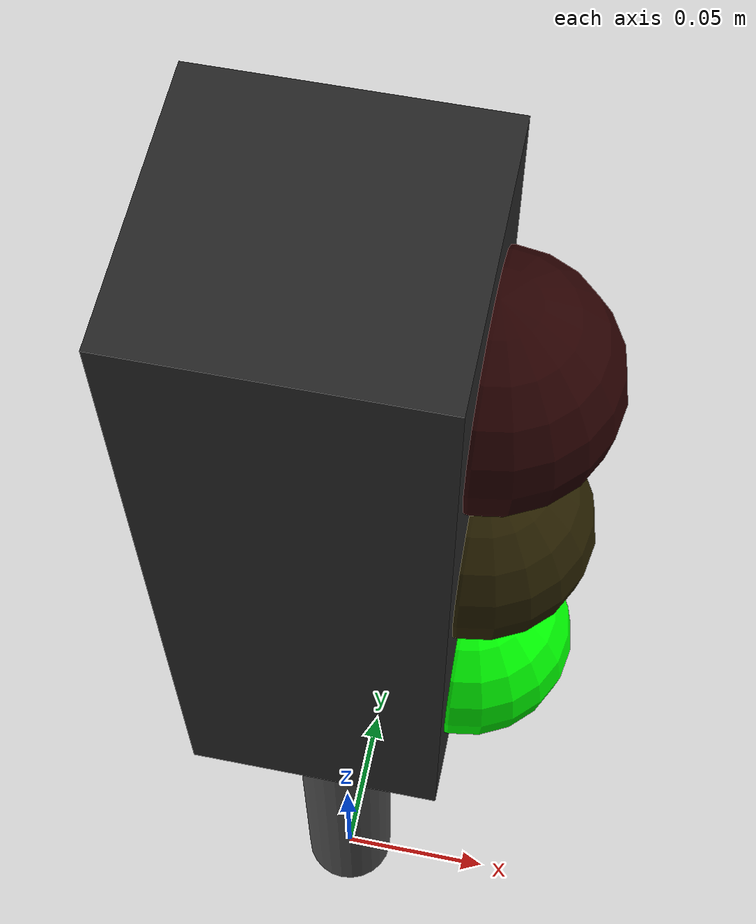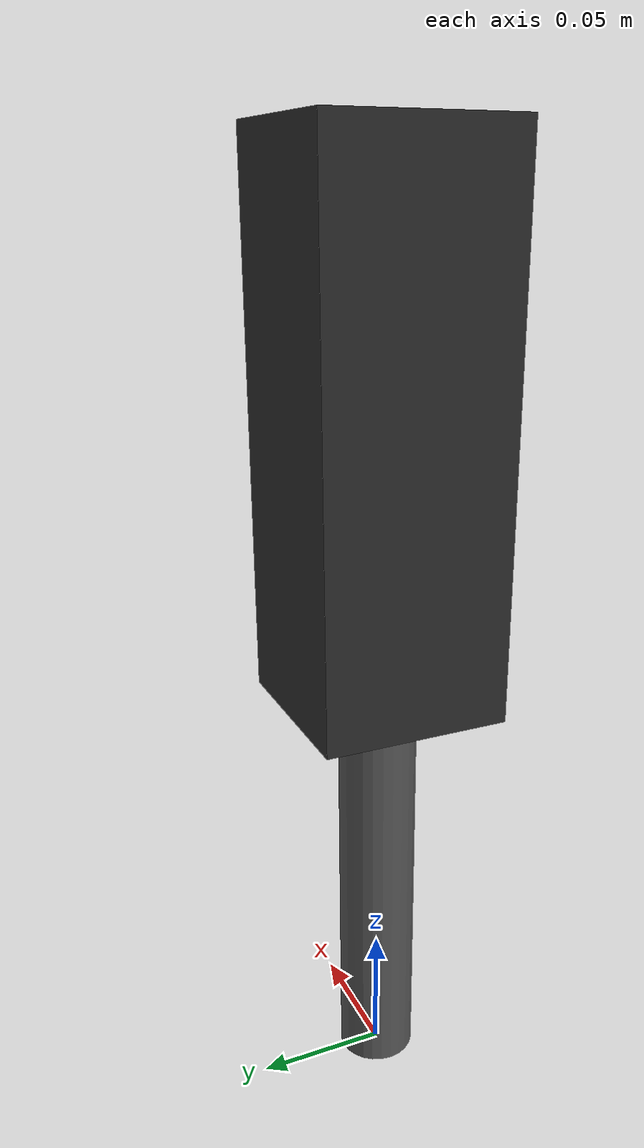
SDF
<?xml version="1.0" ?>
<!-- Low-profile traffic light (GREEN on). Bulbs sit around z=0.25 m so the
     robot's top camera (z=0.12 m, pitched ~9 deg up) sees them head-on. -->
<sdf version="1.6">
  <model name="traffic_light_green">
    <static>true</static>
    <link name="link">
      <!-- Post -->
      <visual name="post">
        <pose>0 0 0.09 0 0 0</pose>
        <geometry>
          <cylinder>
            <radius>0.015</radius>
            <length>0.18</length>
          </cylinder>
        </geometry>
        <material>
          <ambient>0.3 0.3 0.3 1</ambient>
          <diffuse>0.3 0.3 0.3 1</diffuse>
        </material>
      </visual>
      <collision name="post_collision">
        <pose>0 0 0.09 0 0 0</pose>
        <geometry>
          <cylinder>
            <radius>0.015</radius>
            <length>0.18</length>
          </cylinder>
        </geometry>
      </collision>

      <!-- Housing (vertical 3-light stack) -->
      <visual name="housing">
        <pose>0 0 0.26 0 0 0</pose>
        <geometry>
          <box>
            <size>0.07 0.07 0.20</size>
          </box>
        </geometry>
        <material>
          <ambient>0.15 0.15 0.15 1</ambient>
          <diffuse>0.15 0.15 0.15 1</diffuse>
        </material>
      </visual>

      <!-- Red light (OFF) -->
      <visual name="red_light">
        <pose>0.036 0 0.32 0 0 0</pose>
        <geometry>
          <sphere><radius>0.028</radius></sphere>
        </geometry>
        <material>
          <ambient>0.15 0.0 0.0 1</ambient>
          <diffuse>0.15 0.0 0.0 1</diffuse>
        </material>
      </visual>

      <!-- Yellow light (OFF) -->
      <visual name="yellow_light">
        <pose>0.036 0 0.26 0 0 0</pose>
        <geometry>
          <sphere><radius>0.028</radius></sphere>
        </geometry>
        <material>
          <ambient>0.15 0.12 0.0 1</ambient>
          <diffuse>0.15 0.12 0.0 1</diffuse>
        </material>
      </visual>

      <!-- Green light (ON - emissive) -->
      <visual name="green_light">
        <pose>0.036 0 0.20 0 0 0</pose>
        <geometry>
          <sphere><radius>0.028</radius></sphere>
        </geometry>
        <material>
          <ambient>0 1 0 1</ambient>
          <diffuse>0 1 0 1</diffuse>
          <specular>0 1 0 1</specular>
          <emissive>0 1 0 1</emissive>
        </material>
      </visual>

    </link>
  </model>
</sdf>
